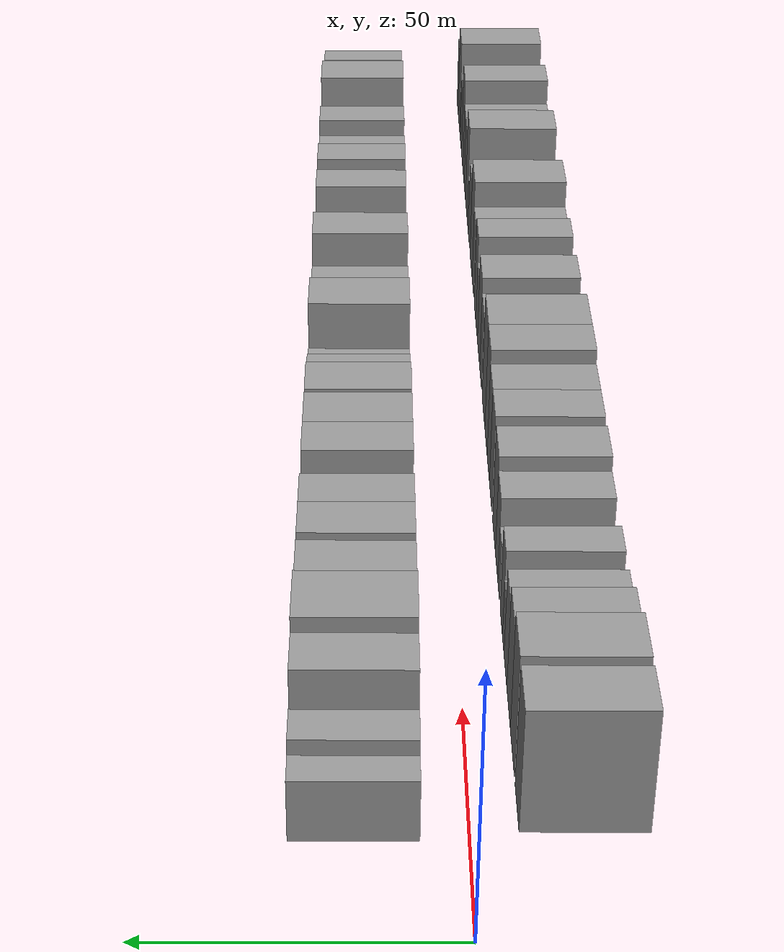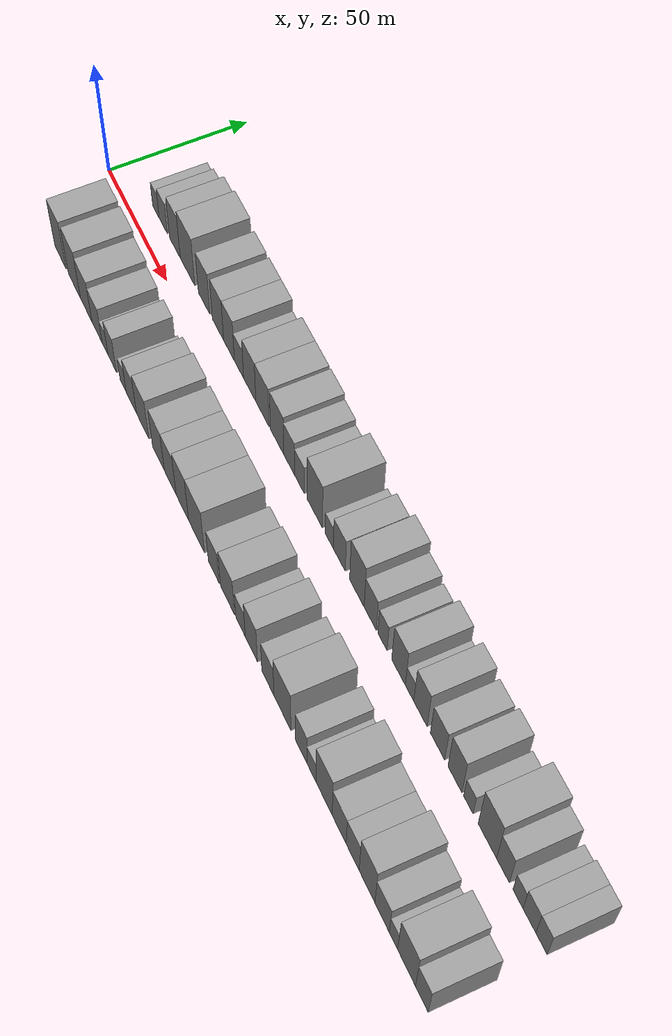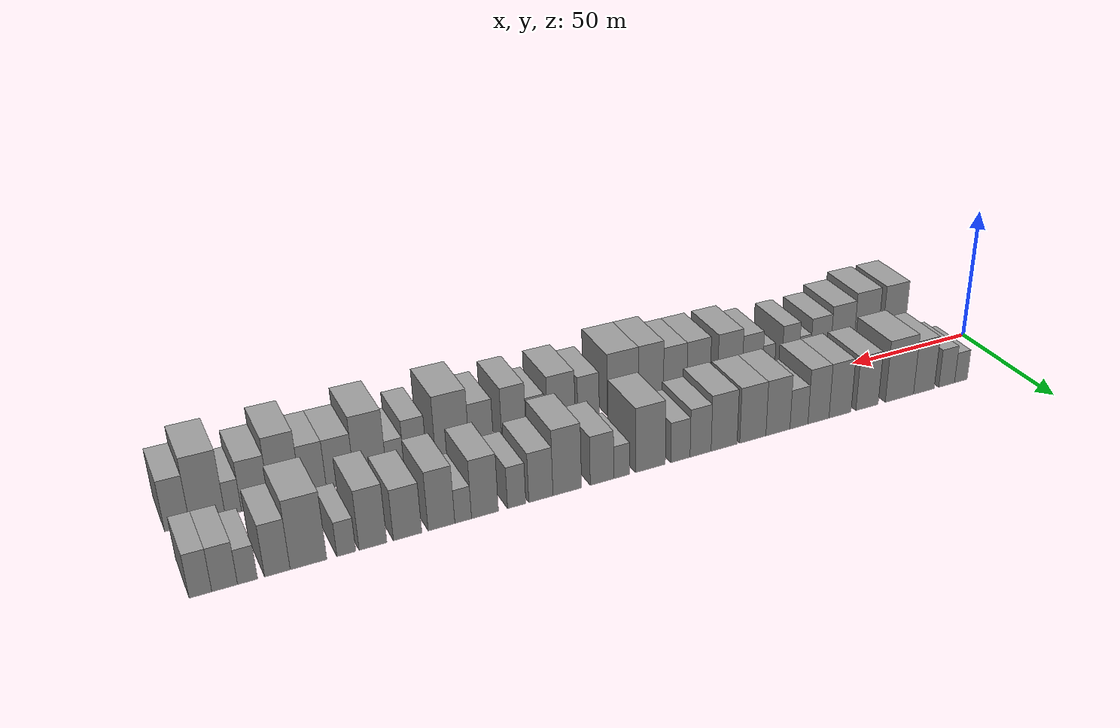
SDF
<sdf version="1.6">
 <world name="default">
  <scene>
   <sky><clouds><speed>12</speed></clouds></sky>
   <ambient>0.4 0.4 0.4 1</ambient>
   <background>0.7 0.7 0.7 1</background>
   <shadows>1</shadows>
  </scene>
  <gravity>0 0 -9.8066</gravity>
  <magnetic_field>6e-06 2.3e-05 -4.2e-05</magnetic_field>
  <physics default="0" name="default_physics" type="ode">
   <ode>
    <solver>
     <type>quick</type>
     <iters>10</iters>
     <sor>1.0</sor>
     <use_dynamic_moi_rescaling>0</use_dynamic_moi_rescaling>
    </solver>
    <constraints>
     <cfm>0</cfm>
     <erp>0.2</erp>
     <contact_max_correcting_vel>100</contact_max_correcting_vel>
     <contact_surface_layer>0.001</contact_surface_layer>
    </constraints>
   </ode>
   <max_step_size>0.004</max_step_size>
   <real_time_factor>1</real_time_factor>
   <real_time_update_rate>250</real_time_update_rate>
  </physics>
  <light name="sun" type="directional">
   <pose>0 0 10 0 0 0</pose>
   <diffuse>0.8 0.8 0.8 1</diffuse>
   <specular>0.2 0.2 0.2 1</specular>
   <attenuation>
    <range>1000</range>
    <constant>0.9</constant>
    <linear>0.01</linear>
    <quadratic>0.001</quadratic>
   </attenuation>
   <direction>-0.5 0.1 -0.9</direction>
  </light>
  <model name="building_1">
   <static>1</static>
   <pose>22.8088 17.5000 0 0.000000 0.000000 1.570796</pose>
   <link name="link">
    <pose>0 0 6.00 0 0 0</pose>
    <collision name="collision"><geometry><box><size>20.0000 5.6176 12.0000</size></box></geometry></collision>
    <visual name="visual">
     <cast_shadows>0</cast_shadows>
     <geometry><box><size>20.0000 5.6176 12.0000</size></box></geometry>
     <material>
      <script>
       <uri>model://grey_wall/materials/scripts</uri>
       <uri>model://grey_wall/materials/textures</uri>
       <name>vrc/grey_wall</name>
      </script>
     </material>
    </visual>
   </link>
  </model>
  <model name="building_2">
   <static>1</static>
   <pose>29.0675 17.5000 0 0.000000 0.000000 1.570796</pose>
   <link name="link">
    <pose>0 0 7.50 0 0 0</pose>
    <collision name="collision"><geometry><box><size>20.0000 6.8997 15.0000</size></box></geometry></collision>
    <visual name="visual">
     <cast_shadows>0</cast_shadows>
     <geometry><box><size>20.0000 6.8997 15.0000</size></box></geometry>
     <material>
      <script>
       <uri>model://grey_wall/materials/scripts</uri>
       <uri>model://grey_wall/materials/textures</uri>
       <name>vrc/grey_wall</name>
      </script>
     </material>
    </visual>
   </link>
  </model>
  <model name="building_3">
   <static>1</static>
   <pose>38.9829 17.5000 0 0.000000 0.000000 1.570796</pose>
   <link name="link">
    <pose>0 0 10.50 0 0 0</pose>
    <collision name="collision"><geometry><box><size>20.0000 8.9311 21.0000</size></box></geometry></collision>
    <visual name="visual">
     <cast_shadows>0</cast_shadows>
     <geometry><box><size>20.0000 8.9311 21.0000</size></box></geometry>
     <material>
      <script>
       <uri>model://grey_wall/materials/scripts</uri>
       <uri>model://grey_wall/materials/textures</uri>
       <name>vrc/grey_wall</name>
      </script>
     </material>
    </visual>
   </link>
  </model>
  <model name="building_4">
   <static>1</static>
   <pose>49.4302 17.5000 0 0.000000 0.000000 1.570796</pose>
   <link name="link">
    <pose>0 0 12.00 0 0 0</pose>
    <collision name="collision"><geometry><box><size>20.0000 11.9635 24.0000</size></box></geometry></collision>
    <visual name="visual">
     <cast_shadows>0</cast_shadows>
     <geometry><box><size>20.0000 11.9635 24.0000</size></box></geometry>
     <material>
      <script>
       <uri>model://grey_wall/materials/scripts</uri>
       <uri>model://grey_wall/materials/textures</uri>
       <name>vrc/grey_wall</name>
      </script>
     </material>
    </visual>
   </link>
  </model>
  <model name="building_5">
   <static>1</static>
   <pose>63.0284 17.5000 0 0.000000 0.000000 1.570796</pose>
   <link name="link">
    <pose>0 0 10.50 0 0 0</pose>
    <collision name="collision"><geometry><box><size>20.0000 9.2328 21.0000</size></box></geometry></collision>
    <visual name="visual">
     <cast_shadows>0</cast_shadows>
     <geometry><box><size>20.0000 9.2328 21.0000</size></box></geometry>
     <material>
      <script>
       <uri>model://grey_wall/materials/scripts</uri>
       <uri>model://grey_wall/materials/textures</uri>
       <name>vrc/grey_wall</name>
      </script>
     </material>
    </visual>
   </link>
  </model>
  <model name="building_6">
   <static>1</static>
   <pose>74.1490 17.5000 0 0.000000 0.000000 1.570796</pose>
   <link name="link">
    <pose>0 0 10.50 0 0 0</pose>
    <collision name="collision"><geometry><box><size>20.0000 9.0084 21.0000</size></box></geometry></collision>
    <visual name="visual">
     <cast_shadows>0</cast_shadows>
     <geometry><box><size>20.0000 9.0084 21.0000</size></box></geometry>
     <material>
      <script>
       <uri>model://grey_wall/materials/scripts</uri>
       <uri>model://grey_wall/materials/textures</uri>
       <name>vrc/grey_wall</name>
      </script>
     </material>
    </visual>
   </link>
  </model>
  <model name="building_7">
   <static>1</static>
   <pose>82.8882 17.5000 0 0.000000 0.000000 1.570796</pose>
   <link name="link">
    <pose>0 0 10.50 0 0 0</pose>
    <collision name="collision"><geometry><box><size>20.0000 8.4700 21.0000</size></box></geometry></collision>
    <visual name="visual">
     <cast_shadows>0</cast_shadows>
     <geometry><box><size>20.0000 8.4700 21.0000</size></box></geometry>
     <material>
      <script>
       <uri>model://grey_wall/materials/scripts</uri>
       <uri>model://grey_wall/materials/textures</uri>
       <name>vrc/grey_wall</name>
      </script>
     </material>
    </visual>
   </link>
  </model>
  <model name="building_8">
   <static>1</static>
   <pose>90.6920 17.5000 0 0.000000 0.000000 1.570796</pose>
   <link name="link">
    <pose>0 0 7.50 0 0 0</pose>
    <collision name="collision"><geometry><box><size>20.0000 7.1376 15.0000</size></box></geometry></collision>
    <visual name="visual">
     <cast_shadows>0</cast_shadows>
     <geometry><box><size>20.0000 7.1376 15.0000</size></box></geometry>
     <material>
      <script>
       <uri>model://grey_wall/materials/scripts</uri>
       <uri>model://grey_wall/materials/textures</uri>
       <name>vrc/grey_wall</name>
      </script>
     </material>
    </visual>
   </link>
  </model>
  <model name="building_9">
   <static>1</static>
   <pose>98.9678 17.5000 0 0.000000 0.000000 1.570796</pose>
   <link name="link">
    <pose>0 0 10.50 0 0 0</pose>
    <collision name="collision"><geometry><box><size>20.0000 9.4140 21.0000</size></box></geometry></collision>
    <visual name="visual">
     <cast_shadows>0</cast_shadows>
     <geometry><box><size>20.0000 9.4140 21.0000</size></box></geometry>
     <material>
      <script>
       <uri>model://grey_wall/materials/scripts</uri>
       <uri>model://grey_wall/materials/textures</uri>
       <name>vrc/grey_wall</name>
      </script>
     </material>
    </visual>
   </link>
  </model>
  <model name="building_10">
   <static>1</static>
   <pose>108.7142 17.5000 0 0.000000 0.000000 1.570796</pose>
   <link name="link">
    <pose>0 0 10.50 0 0 0</pose>
    <collision name="collision"><geometry><box><size>20.0000 10.0789 21.0000</size></box></geometry></collision>
    <visual name="visual">
     <cast_shadows>0</cast_shadows>
     <geometry><box><size>20.0000 10.0789 21.0000</size></box></geometry>
     <material>
      <script>
       <uri>model://grey_wall/materials/scripts</uri>
       <uri>model://grey_wall/materials/textures</uri>
       <name>vrc/grey_wall</name>
      </script>
     </material>
    </visual>
   </link>
  </model>
  <model name="building_11">
   <static>1</static>
   <pose>119.6716 17.5000 0 0.000000 0.000000 1.570796</pose>
   <link name="link">
    <pose>0 0 10.50 0 0 0</pose>
    <collision name="collision"><geometry><box><size>20.0000 9.8359 21.0000</size></box></geometry></collision>
    <visual name="visual">
     <cast_shadows>0</cast_shadows>
     <geometry><box><size>20.0000 9.8359 21.0000</size></box></geometry>
     <material>
      <script>
       <uri>model://grey_wall/materials/scripts</uri>
       <uri>model://grey_wall/materials/textures</uri>
       <name>vrc/grey_wall</name>
      </script>
     </material>
    </visual>
   </link>
  </model>
  <model name="building_12">
   <static>1</static>
   <pose>128.5033 17.5000 0 0.000000 0.000000 1.570796</pose>
   <link name="link">
    <pose>0 0 9.00 0 0 0</pose>
    <collision name="collision"><geometry><box><size>20.0000 7.8274 18.0000</size></box></geometry></collision>
    <visual name="visual">
     <cast_shadows>0</cast_shadows>
     <geometry><box><size>20.0000 7.8274 18.0000</size></box></geometry>
     <material>
      <script>
       <uri>model://grey_wall/materials/scripts</uri>
       <uri>model://grey_wall/materials/textures</uri>
       <name>vrc/grey_wall</name>
      </script>
     </material>
    </visual>
   </link>
  </model>
  <model name="building_13">
   <static>1</static>
   <pose>135.9548 17.5000 0 0.000000 0.000000 1.570796</pose>
   <link name="link">
    <pose>0 0 7.50 0 0 0</pose>
    <collision name="collision"><geometry><box><size>20.0000 7.0756 15.0000</size></box></geometry></collision>
    <visual name="visual">
     <cast_shadows>0</cast_shadows>
     <geometry><box><size>20.0000 7.0756 15.0000</size></box></geometry>
     <material>
      <script>
       <uri>model://grey_wall/materials/scripts</uri>
       <uri>model://grey_wall/materials/textures</uri>
       <name>vrc/grey_wall</name>
      </script>
     </material>
    </visual>
   </link>
  </model>
  <model name="building_14">
   <static>1</static>
   <pose>146.8929 17.5000 0 0.000000 0.000000 1.570796</pose>
   <link name="link">
    <pose>0 0 12.00 0 0 0</pose>
    <collision name="collision"><geometry><box><size>20.0000 10.8006 24.0000</size></box></geometry></collision>
    <visual name="visual">
     <cast_shadows>0</cast_shadows>
     <geometry><box><size>20.0000 10.8006 24.0000</size></box></geometry>
     <material>
      <script>
       <uri>model://grey_wall/materials/scripts</uri>
       <uri>model://grey_wall/materials/textures</uri>
       <name>vrc/grey_wall</name>
      </script>
     </material>
    </visual>
   </link>
  </model>
  <model name="building_15">
   <static>1</static>
   <pose>157.1167 17.5000 0 0.000000 0.000000 1.570796</pose>
   <link name="link">
    <pose>0 0 6.00 0 0 0</pose>
    <collision name="collision"><geometry><box><size>20.0000 5.6469 12.0000</size></box></geometry></collision>
    <visual name="visual">
     <cast_shadows>0</cast_shadows>
     <geometry><box><size>20.0000 5.6469 12.0000</size></box></geometry>
     <material>
      <script>
       <uri>model://grey_wall/materials/scripts</uri>
       <uri>model://grey_wall/materials/textures</uri>
       <name>vrc/grey_wall</name>
      </script>
     </material>
    </visual>
   </link>
  </model>
  <model name="building_16">
   <static>1</static>
   <pose>164.0576 17.5000 0 0.000000 0.000000 1.570796</pose>
   <link name="link">
    <pose>0 0 9.00 0 0 0</pose>
    <collision name="collision"><geometry><box><size>20.0000 8.2351 18.0000</size></box></geometry></collision>
    <visual name="visual">
     <cast_shadows>0</cast_shadows>
     <geometry><box><size>20.0000 8.2351 18.0000</size></box></geometry>
     <material>
      <script>
       <uri>model://grey_wall/materials/scripts</uri>
       <uri>model://grey_wall/materials/textures</uri>
       <name>vrc/grey_wall</name>
      </script>
     </material>
    </visual>
   </link>
  </model>
  <model name="building_17">
   <static>1</static>
   <pose>176.0760 17.5000 0 0.000000 0.000000 1.570796</pose>
   <link name="link">
    <pose>0 0 12.00 0 0 0</pose>
    <collision name="collision"><geometry><box><size>20.0000 9.8016 24.0000</size></box></geometry></collision>
    <visual name="visual">
     <cast_shadows>0</cast_shadows>
     <geometry><box><size>20.0000 9.8016 24.0000</size></box></geometry>
     <material>
      <script>
       <uri>model://grey_wall/materials/scripts</uri>
       <uri>model://grey_wall/materials/textures</uri>
       <name>vrc/grey_wall</name>
      </script>
     </material>
    </visual>
   </link>
  </model>
  <model name="building_18">
   <static>1</static>
   <pose>185.0496 17.5000 0 0.000000 0.000000 1.570796</pose>
   <link name="link">
    <pose>0 0 9.00 0 0 0</pose>
    <collision name="collision"><geometry><box><size>20.0000 8.1455 18.0000</size></box></geometry></collision>
    <visual name="visual">
     <cast_shadows>0</cast_shadows>
     <geometry><box><size>20.0000 8.1455 18.0000</size></box></geometry>
     <material>
      <script>
       <uri>model://grey_wall/materials/scripts</uri>
       <uri>model://grey_wall/materials/textures</uri>
       <name>vrc/grey_wall</name>
      </script>
     </material>
    </visual>
   </link>
  </model>
  <model name="building_19">
   <static>1</static>
   <pose>193.1614 17.5000 0 0.000000 0.000000 1.570796</pose>
   <link name="link">
    <pose>0 0 7.50 0 0 0</pose>
    <collision name="collision"><geometry><box><size>20.0000 6.0782 15.0000</size></box></geometry></collision>
    <visual name="visual">
     <cast_shadows>0</cast_shadows>
     <geometry><box><size>20.0000 6.0782 15.0000</size></box></geometry>
     <material>
      <script>
       <uri>model://grey_wall/materials/scripts</uri>
       <uri>model://grey_wall/materials/textures</uri>
       <name>vrc/grey_wall</name>
      </script>
     </material>
    </visual>
   </link>
  </model>
  <model name="building_20">
   <static>1</static>
   <pose>203.5770 17.5000 0 0.000000 0.000000 1.570796</pose>
   <link name="link">
    <pose>0 0 10.50 0 0 0</pose>
    <collision name="collision"><geometry><box><size>20.0000 8.7530 21.0000</size></box></geometry></collision>
    <visual name="visual">
     <cast_shadows>0</cast_shadows>
     <geometry><box><size>20.0000 8.7530 21.0000</size></box></geometry>
     <material>
      <script>
       <uri>model://grey_wall/materials/scripts</uri>
       <uri>model://grey_wall/materials/textures</uri>
       <name>vrc/grey_wall</name>
      </script>
     </material>
    </visual>
   </link>
  </model>
  <model name="building_21">
   <static>1</static>
   <pose>210.6420 17.5000 0 0.000000 0.000000 1.570796</pose>
   <link name="link">
    <pose>0 0 6.00 0 0 0</pose>
    <collision name="collision"><geometry><box><size>20.0000 5.3771 12.0000</size></box></geometry></collision>
    <visual name="visual">
     <cast_shadows>0</cast_shadows>
     <geometry><box><size>20.0000 5.3771 12.0000</size></box></geometry>
     <material>
      <script>
       <uri>model://grey_wall/materials/scripts</uri>
       <uri>model://grey_wall/materials/textures</uri>
       <name>vrc/grey_wall</name>
      </script>
     </material>
    </visual>
   </link>
  </model>
  <model name="building_22">
   <static>1</static>
   <pose>217.5664 17.5000 0 0.000000 0.000000 1.570796</pose>
   <link name="link">
    <pose>0 0 10.50 0 0 0</pose>
    <collision name="collision"><geometry><box><size>20.0000 8.4718 21.0000</size></box></geometry></collision>
    <visual name="visual">
     <cast_shadows>0</cast_shadows>
     <geometry><box><size>20.0000 8.4718 21.0000</size></box></geometry>
     <material>
      <script>
       <uri>model://grey_wall/materials/scripts</uri>
       <uri>model://grey_wall/materials/textures</uri>
       <name>vrc/grey_wall</name>
      </script>
     </material>
    </visual>
   </link>
  </model>
  <model name="building_23">
   <static>1</static>
   <pose>228.2282 17.5000 0 0.000000 0.000000 1.570796</pose>
   <link name="link">
    <pose>0 0 9.00 0 0 0</pose>
    <collision name="collision"><geometry><box><size>20.0000 8.8518 18.0000</size></box></geometry></collision>
    <visual name="visual">
     <cast_shadows>0</cast_shadows>
     <geometry><box><size>20.0000 8.8518 18.0000</size></box></geometry>
     <material>
      <script>
       <uri>model://grey_wall/materials/scripts</uri>
       <uri>model://grey_wall/materials/textures</uri>
       <name>vrc/grey_wall</name>
      </script>
     </material>
    </visual>
   </link>
  </model>
  <model name="building_24">
   <static>1</static>
   <pose>238.8957 17.5000 0 0.000000 0.000000 1.570796</pose>
   <link name="link">
    <pose>0 0 10.50 0 0 0</pose>
    <collision name="collision"><geometry><box><size>20.0000 8.4833 21.0000</size></box></geometry></collision>
    <visual name="visual">
     <cast_shadows>0</cast_shadows>
     <geometry><box><size>20.0000 8.4833 21.0000</size></box></geometry>
     <material>
      <script>
       <uri>model://grey_wall/materials/scripts</uri>
       <uri>model://grey_wall/materials/textures</uri>
       <name>vrc/grey_wall</name>
      </script>
     </material>
    </visual>
   </link>
  </model>
  <model name="building_25">
   <static>1</static>
   <pose>246.9758 17.5000 0 0.000000 0.000000 1.570796</pose>
   <link name="link">
    <pose>0 0 6.00 0 0 0</pose>
    <collision name="collision"><geometry><box><size>20.0000 5.6768 12.0000</size></box></geometry></collision>
    <visual name="visual">
     <cast_shadows>0</cast_shadows>
     <geometry><box><size>20.0000 5.6768 12.0000</size></box></geometry>
     <material>
      <script>
       <uri>model://grey_wall/materials/scripts</uri>
       <uri>model://grey_wall/materials/textures</uri>
       <name>vrc/grey_wall</name>
      </script>
     </material>
    </visual>
   </link>
  </model>
  <model name="building_26">
   <static>1</static>
   <pose>258.2044 17.5000 0 0.000000 0.000000 1.570796</pose>
   <link name="link">
    <pose>0 0 12.00 0 0 0</pose>
    <collision name="collision"><geometry><box><size>20.0000 10.7804 24.0000</size></box></geometry></collision>
    <visual name="visual">
     <cast_shadows>0</cast_shadows>
     <geometry><box><size>20.0000 10.7804 24.0000</size></box></geometry>
     <material>
      <script>
       <uri>model://grey_wall/materials/scripts</uri>
       <uri>model://grey_wall/materials/textures</uri>
       <name>vrc/grey_wall</name>
      </script>
     </material>
    </visual>
   </link>
  </model>
  <model name="building_27">
   <static>1</static>
   <pose>267.2992 17.5000 0 0.000000 0.000000 1.570796</pose>
   <link name="link">
    <pose>0 0 9.00 0 0 0</pose>
    <collision name="collision"><geometry><box><size>20.0000 7.4094 18.0000</size></box></geometry></collision>
    <visual name="visual">
     <cast_shadows>0</cast_shadows>
     <geometry><box><size>20.0000 7.4094 18.0000</size></box></geometry>
     <material>
      <script>
       <uri>model://grey_wall/materials/scripts</uri>
       <uri>model://grey_wall/materials/textures</uri>
       <name>vrc/grey_wall</name>
      </script>
     </material>
    </visual>
   </link>
  </model>
  <model name="building_28">
   <static>1</static>
   <pose>275.8437 17.5000 0 0.000000 0.000000 1.570796</pose>
   <link name="link">
    <pose>0 0 6.00 0 0 0</pose>
    <collision name="collision"><geometry><box><size>20.0000 5.6797 12.0000</size></box></geometry></collision>
    <visual name="visual">
     <cast_shadows>0</cast_shadows>
     <geometry><box><size>20.0000 5.6797 12.0000</size></box></geometry>
     <material>
      <script>
       <uri>model://grey_wall/materials/scripts</uri>
       <uri>model://grey_wall/materials/textures</uri>
       <name>vrc/grey_wall</name>
      </script>
     </material>
    </visual>
   </link>
  </model>
  <model name="building_29">
   <static>1</static>
   <pose>282.2980 17.5000 0 0.000000 0.000000 1.570796</pose>
   <link name="link">
    <pose>0 0 7.50 0 0 0</pose>
    <collision name="collision"><geometry><box><size>20.0000 7.2288 15.0000</size></box></geometry></collision>
    <visual name="visual">
     <cast_shadows>0</cast_shadows>
     <geometry><box><size>20.0000 7.2288 15.0000</size></box></geometry>
     <material>
      <script>
       <uri>model://grey_wall/materials/scripts</uri>
       <uri>model://grey_wall/materials/textures</uri>
       <name>vrc/grey_wall</name>
      </script>
     </material>
    </visual>
   </link>
  </model>
  <model name="building_30">
   <static>1</static>
   <pose>289.0612 17.5000 0 0.000000 0.000000 1.570796</pose>
   <link name="link">
    <pose>0 0 7.50 0 0 0</pose>
    <collision name="collision"><geometry><box><size>20.0000 6.2976 15.0000</size></box></geometry></collision>
    <visual name="visual">
     <cast_shadows>0</cast_shadows>
     <geometry><box><size>20.0000 6.2976 15.0000</size></box></geometry>
     <material>
      <script>
       <uri>model://grey_wall/materials/scripts</uri>
       <uri>model://grey_wall/materials/textures</uri>
       <name>vrc/grey_wall</name>
      </script>
     </material>
    </visual>
   </link>
  </model>
  <model name="building_31">
   <static>1</static>
   <pose>27.0936 -17.5000 0 0.000000 0.000000 1.570796</pose>
   <link name="link">
    <pose>0 0 12.00 0 0 0</pose>
    <collision name="collision"><geometry><box><size>20.0000 10.1872 24.0000</size></box></geometry></collision>
    <visual name="visual">
     <cast_shadows>0</cast_shadows>
     <geometry><box><size>20.0000 10.1872 24.0000</size></box></geometry>
     <material>
      <script>
       <uri>model://grey_wall/materials/scripts</uri>
       <uri>model://grey_wall/materials/textures</uri>
       <name>vrc/grey_wall</name>
      </script>
     </material>
    </visual>
   </link>
  </model>
  <model name="building_32">
   <static>1</static>
   <pose>39.5637 -17.5000 0 0.000000 0.000000 1.570796</pose>
   <link name="link">
    <pose>0 0 12.00 0 0 0</pose>
    <collision name="collision"><geometry><box><size>20.0000 10.7530 24.0000</size></box></geometry></collision>
    <visual name="visual">
     <cast_shadows>0</cast_shadows>
     <geometry><box><size>20.0000 10.7530 24.0000</size></box></geometry>
     <material>
      <script>
       <uri>model://grey_wall/materials/scripts</uri>
       <uri>model://grey_wall/materials/textures</uri>
       <name>vrc/grey_wall</name>
      </script>
     </material>
    </visual>
   </link>
  </model>
  <model name="building_33">
   <static>1</static>
   <pose>50.0177 -17.5000 0 0.000000 0.000000 1.570796</pose>
   <link name="link">
    <pose>0 0 10.50 0 0 0</pose>
    <collision name="collision"><geometry><box><size>20.0000 10.1551 21.0000</size></box></geometry></collision>
    <visual name="visual">
     <cast_shadows>0</cast_shadows>
     <geometry><box><size>20.0000 10.1551 21.0000</size></box></geometry>
     <material>
      <script>
       <uri>model://grey_wall/materials/scripts</uri>
       <uri>model://grey_wall/materials/textures</uri>
       <name>vrc/grey_wall</name>
      </script>
     </material>
    </visual>
   </link>
  </model>
  <model name="building_34">
   <static>1</static>
   <pose>59.4361 -17.5000 0 0.000000 0.000000 1.570796</pose>
   <link name="link">
    <pose>0 0 9.00 0 0 0</pose>
    <collision name="collision"><geometry><box><size>20.0000 8.6816 18.0000</size></box></geometry></collision>
    <visual name="visual">
     <cast_shadows>0</cast_shadows>
     <geometry><box><size>20.0000 8.6816 18.0000</size></box></geometry>
     <material>
      <script>
       <uri>model://grey_wall/materials/scripts</uri>
       <uri>model://grey_wall/materials/textures</uri>
       <name>vrc/grey_wall</name>
      </script>
     </material>
    </visual>
   </link>
  </model>
  <model name="building_35">
   <static>1</static>
   <pose>66.2339 -17.5000 0 0.000000 0.000000 1.570796</pose>
   <link name="link">
    <pose>0 0 6.00 0 0 0</pose>
    <collision name="collision"><geometry><box><size>20.0000 4.9140 12.0000</size></box></geometry></collision>
    <visual name="visual">
     <cast_shadows>0</cast_shadows>
     <geometry><box><size>20.0000 4.9140 12.0000</size></box></geometry>
     <material>
      <script>
       <uri>model://grey_wall/materials/scripts</uri>
       <uri>model://grey_wall/materials/textures</uri>
       <name>vrc/grey_wall</name>
      </script>
     </material>
    </visual>
   </link>
  </model>
  <model name="building_36">
   <static>1</static>
   <pose>72.3011 -17.5000 0 0.000000 0.000000 1.570796</pose>
   <link name="link">
    <pose>0 0 9.00 0 0 0</pose>
    <collision name="collision"><geometry><box><size>20.0000 7.2204 18.0000</size></box></geometry></collision>
    <visual name="visual">
     <cast_shadows>0</cast_shadows>
     <geometry><box><size>20.0000 7.2204 18.0000</size></box></geometry>
     <material>
      <script>
       <uri>model://grey_wall/materials/scripts</uri>
       <uri>model://grey_wall/materials/textures</uri>
       <name>vrc/grey_wall</name>
      </script>
     </material>
    </visual>
   </link>
  </model>
  <model name="building_37">
   <static>1</static>
   <pose>81.4297 -17.5000 0 0.000000 0.000000 1.570796</pose>
   <link name="link">
    <pose>0 0 6.00 0 0 0</pose>
    <collision name="collision"><geometry><box><size>20.0000 5.0368 12.0000</size></box></geometry></collision>
    <visual name="visual">
     <cast_shadows>0</cast_shadows>
     <geometry><box><size>20.0000 5.0368 12.0000</size></box></geometry>
     <material>
      <script>
       <uri>model://grey_wall/materials/scripts</uri>
       <uri>model://grey_wall/materials/textures</uri>
       <name>vrc/grey_wall</name>
      </script>
     </material>
    </visual>
   </link>
  </model>
  <model name="building_38">
   <static>1</static>
   <pose>88.1832 -17.5000 0 0.000000 0.000000 1.570796</pose>
   <link name="link">
    <pose>0 0 9.00 0 0 0</pose>
    <collision name="collision"><geometry><box><size>20.0000 8.4702 18.0000</size></box></geometry></collision>
    <visual name="visual">
     <cast_shadows>0</cast_shadows>
     <geometry><box><size>20.0000 8.4702 18.0000</size></box></geometry>
     <material>
      <script>
       <uri>model://grey_wall/materials/scripts</uri>
       <uri>model://grey_wall/materials/textures</uri>
       <name>vrc/grey_wall</name>
      </script>
     </material>
    </visual>
   </link>
  </model>
  <model name="building_39">
   <static>1</static>
   <pose>97.4224 -17.5000 0 0.000000 0.000000 1.570796</pose>
   <link name="link">
    <pose>0 0 10.50 0 0 0</pose>
    <collision name="collision"><geometry><box><size>20.0000 10.0081 21.0000</size></box></geometry></collision>
    <visual name="visual">
     <cast_shadows>0</cast_shadows>
     <geometry><box><size>20.0000 10.0081 21.0000</size></box></geometry>
     <material>
      <script>
       <uri>model://grey_wall/materials/scripts</uri>
       <uri>model://grey_wall/materials/textures</uri>
       <name>vrc/grey_wall</name>
      </script>
     </material>
    </visual>
   </link>
  </model>
  <model name="building_40">
   <static>1</static>
   <pose>110.1079 -17.5000 0 0.000000 0.000000 1.570796</pose>
   <link name="link">
    <pose>0 0 10.50 0 0 0</pose>
    <collision name="collision"><geometry><box><size>20.0000 9.3630 21.0000</size></box></geometry></collision>
    <visual name="visual">
     <cast_shadows>0</cast_shadows>
     <geometry><box><size>20.0000 9.3630 21.0000</size></box></geometry>
     <material>
      <script>
       <uri>model://grey_wall/materials/scripts</uri>
       <uri>model://grey_wall/materials/textures</uri>
       <name>vrc/grey_wall</name>
      </script>
     </material>
    </visual>
   </link>
  </model>
  <model name="building_41">
   <static>1</static>
   <pose>119.3679 -17.5000 0 0.000000 0.000000 1.570796</pose>
   <link name="link">
    <pose>0 0 10.50 0 0 0</pose>
    <collision name="collision"><geometry><box><size>20.0000 9.1570 21.0000</size></box></geometry></collision>
    <visual name="visual">
     <cast_shadows>0</cast_shadows>
     <geometry><box><size>20.0000 9.1570 21.0000</size></box></geometry>
     <material>
      <script>
       <uri>model://grey_wall/materials/scripts</uri>
       <uri>model://grey_wall/materials/textures</uri>
       <name>vrc/grey_wall</name>
      </script>
     </material>
    </visual>
   </link>
  </model>
  <model name="building_42">
   <static>1</static>
   <pose>128.7870 -17.5000 0 0.000000 0.000000 1.570796</pose>
   <link name="link">
    <pose>0 0 12.00 0 0 0</pose>
    <collision name="collision"><geometry><box><size>20.0000 9.6812 24.0000</size></box></geometry></collision>
    <visual name="visual">
     <cast_shadows>0</cast_shadows>
     <geometry><box><size>20.0000 9.6812 24.0000</size></box></geometry>
     <material>
      <script>
       <uri>model://grey_wall/materials/scripts</uri>
       <uri>model://grey_wall/materials/textures</uri>
       <name>vrc/grey_wall</name>
      </script>
     </material>
    </visual>
   </link>
  </model>
  <model name="building_43">
   <static>1</static>
   <pose>139.5583 -17.5000 0 0.000000 0.000000 1.570796</pose>
   <link name="link">
    <pose>0 0 12.00 0 0 0</pose>
    <collision name="collision"><geometry><box><size>20.0000 11.8613 24.0000</size></box></geometry></collision>
    <visual name="visual">
     <cast_shadows>0</cast_shadows>
     <geometry><box><size>20.0000 11.8613 24.0000</size></box></geometry>
     <material>
      <script>
       <uri>model://grey_wall/materials/scripts</uri>
       <uri>model://grey_wall/materials/textures</uri>
       <name>vrc/grey_wall</name>
      </script>
     </material>
    </visual>
   </link>
  </model>
  <model name="building_44">
   <static>1</static>
   <pose>152.4879 -17.5000 0 0.000000 0.000000 1.570796</pose>
   <link name="link">
    <pose>0 0 9.00 0 0 0</pose>
    <collision name="collision"><geometry><box><size>20.0000 7.9980 18.0000</size></box></geometry></collision>
    <visual name="visual">
     <cast_shadows>0</cast_shadows>
     <geometry><box><size>20.0000 7.9980 18.0000</size></box></geometry>
     <material>
      <script>
       <uri>model://grey_wall/materials/scripts</uri>
       <uri>model://grey_wall/materials/textures</uri>
       <name>vrc/grey_wall</name>
      </script>
     </material>
    </visual>
   </link>
  </model>
  <model name="building_45">
   <static>1</static>
   <pose>162.5584 -17.5000 0 0.000000 0.000000 1.570796</pose>
   <link name="link">
    <pose>0 0 10.50 0 0 0</pose>
    <collision name="collision"><geometry><box><size>20.0000 10.1430 21.0000</size></box></geometry></collision>
    <visual name="visual">
     <cast_shadows>0</cast_shadows>
     <geometry><box><size>20.0000 10.1430 21.0000</size></box></geometry>
     <material>
      <script>
       <uri>model://grey_wall/materials/scripts</uri>
       <uri>model://grey_wall/materials/textures</uri>
       <name>vrc/grey_wall</name>
      </script>
     </material>
    </visual>
   </link>
  </model>
  <model name="building_46">
   <static>1</static>
   <pose>172.0141 -17.5000 0 0.000000 0.000000 1.570796</pose>
   <link name="link">
    <pose>0 0 7.50 0 0 0</pose>
    <collision name="collision"><geometry><box><size>20.0000 6.7682 15.0000</size></box></geometry></collision>
    <visual name="visual">
     <cast_shadows>0</cast_shadows>
     <geometry><box><size>20.0000 6.7682 15.0000</size></box></geometry>
     <material>
      <script>
       <uri>model://grey_wall/materials/scripts</uri>
       <uri>model://grey_wall/materials/textures</uri>
       <name>vrc/grey_wall</name>
      </script>
     </material>
    </visual>
   </link>
  </model>
  <model name="building_47">
   <static>1</static>
   <pose>179.7088 -17.5000 0 0.000000 0.000000 1.570796</pose>
   <link name="link">
    <pose>0 0 10.50 0 0 0</pose>
    <collision name="collision"><geometry><box><size>20.0000 8.6212 21.0000</size></box></geometry></collision>
    <visual name="visual">
     <cast_shadows>0</cast_shadows>
     <geometry><box><size>20.0000 8.6212 21.0000</size></box></geometry>
     <material>
      <script>
       <uri>model://grey_wall/materials/scripts</uri>
       <uri>model://grey_wall/materials/textures</uri>
       <name>vrc/grey_wall</name>
      </script>
     </material>
    </visual>
   </link>
  </model>
  <model name="building_48">
   <static>1</static>
   <pose>191.2568 -17.5000 0 0.000000 0.000000 1.570796</pose>
   <link name="link">
    <pose>0 0 9.00 0 0 0</pose>
    <collision name="collision"><geometry><box><size>20.0000 8.4749 18.0000</size></box></geometry></collision>
    <visual name="visual">
     <cast_shadows>0</cast_shadows>
     <geometry><box><size>20.0000 8.4749 18.0000</size></box></geometry>
     <material>
      <script>
       <uri>model://grey_wall/materials/scripts</uri>
       <uri>model://grey_wall/materials/textures</uri>
       <name>vrc/grey_wall</name>
      </script>
     </material>
    </visual>
   </link>
  </model>
  <model name="building_49">
   <static>1</static>
   <pose>201.2703 -17.5000 0 0.000000 0.000000 1.570796</pose>
   <link name="link">
    <pose>0 0 12.00 0 0 0</pose>
    <collision name="collision"><geometry><box><size>20.0000 11.5521 24.0000</size></box></geometry></collision>
    <visual name="visual">
     <cast_shadows>0</cast_shadows>
     <geometry><box><size>20.0000 11.5521 24.0000</size></box></geometry>
     <material>
      <script>
       <uri>model://grey_wall/materials/scripts</uri>
       <uri>model://grey_wall/materials/textures</uri>
       <name>vrc/grey_wall</name>
      </script>
     </material>
    </visual>
   </link>
  </model>
  <model name="building_50">
   <static>1</static>
   <pose>213.8423 -17.5000 0 0.000000 0.000000 1.570796</pose>
   <link name="link">
    <pose>0 0 9.00 0 0 0</pose>
    <collision name="collision"><geometry><box><size>20.0000 7.5920 18.0000</size></box></geometry></collision>
    <visual name="visual">
     <cast_shadows>0</cast_shadows>
     <geometry><box><size>20.0000 7.5920 18.0000</size></box></geometry>
     <material>
      <script>
       <uri>model://grey_wall/materials/scripts</uri>
       <uri>model://grey_wall/materials/textures</uri>
       <name>vrc/grey_wall</name>
      </script>
     </material>
    </visual>
   </link>
  </model>
  <model name="building_51">
   <static>1</static>
   <pose>220.6054 -17.5000 0 0.000000 0.000000 1.570796</pose>
   <link name="link">
    <pose>0 0 6.00 0 0 0</pose>
    <collision name="collision"><geometry><box><size>20.0000 5.9341 12.0000</size></box></geometry></collision>
    <visual name="visual">
     <cast_shadows>0</cast_shadows>
     <geometry><box><size>20.0000 5.9341 12.0000</size></box></geometry>
     <material>
      <script>
       <uri>model://grey_wall/materials/scripts</uri>
       <uri>model://grey_wall/materials/textures</uri>
       <name>vrc/grey_wall</name>
      </script>
     </material>
    </visual>
   </link>
  </model>
  <model name="building_52">
   <static>1</static>
   <pose>228.8531 -17.5000 0 0.000000 0.000000 1.570796</pose>
   <link name="link">
    <pose>0 0 12.00 0 0 0</pose>
    <collision name="collision"><geometry><box><size>20.0000 10.5613 24.0000</size></box></geometry></collision>
    <visual name="visual">
     <cast_shadows>0</cast_shadows>
     <geometry><box><size>20.0000 10.5613 24.0000</size></box></geometry>
     <material>
      <script>
       <uri>model://grey_wall/materials/scripts</uri>
       <uri>model://grey_wall/materials/textures</uri>
       <name>vrc/grey_wall</name>
      </script>
     </material>
    </visual>
   </link>
  </model>
  <model name="building_53">
   <static>1</static>
   <pose>238.6192 -17.5000 0 0.000000 0.000000 1.570796</pose>
   <link name="link">
    <pose>0 0 9.00 0 0 0</pose>
    <collision name="collision"><geometry><box><size>20.0000 8.9711 18.0000</size></box></geometry></collision>
    <visual name="visual">
     <cast_shadows>0</cast_shadows>
     <geometry><box><size>20.0000 8.9711 18.0000</size></box></geometry>
     <material>
      <script>
       <uri>model://grey_wall/materials/scripts</uri>
       <uri>model://grey_wall/materials/textures</uri>
       <name>vrc/grey_wall</name>
      </script>
     </material>
    </visual>
   </link>
  </model>
  <model name="building_54">
   <static>1</static>
   <pose>247.1729 -17.5000 0 0.000000 0.000000 1.570796</pose>
   <link name="link">
    <pose>0 0 9.00 0 0 0</pose>
    <collision name="collision"><geometry><box><size>20.0000 8.1363 18.0000</size></box></geometry></collision>
    <visual name="visual">
     <cast_shadows>0</cast_shadows>
     <geometry><box><size>20.0000 8.1363 18.0000</size></box></geometry>
     <material>
      <script>
       <uri>model://grey_wall/materials/scripts</uri>
       <uri>model://grey_wall/materials/textures</uri>
       <name>vrc/grey_wall</name>
      </script>
     </material>
    </visual>
   </link>
  </model>
  <model name="building_55">
   <static>1</static>
   <pose>256.1180 -17.5000 0 0.000000 0.000000 1.570796</pose>
   <link name="link">
    <pose>0 0 12.00 0 0 0</pose>
    <collision name="collision"><geometry><box><size>20.0000 9.7540 24.0000</size></box></geometry></collision>
    <visual name="visual">
     <cast_shadows>0</cast_shadows>
     <geometry><box><size>20.0000 9.7540 24.0000</size></box></geometry>
     <material>
      <script>
       <uri>model://grey_wall/materials/scripts</uri>
       <uri>model://grey_wall/materials/textures</uri>
       <name>vrc/grey_wall</name>
      </script>
     </material>
    </visual>
   </link>
  </model>
  <model name="building_56">
   <static>1</static>
   <pose>265.3209 -17.5000 0 0.000000 0.000000 1.570796</pose>
   <link name="link">
    <pose>0 0 9.00 0 0 0</pose>
    <collision name="collision"><geometry><box><size>20.0000 8.6519 18.0000</size></box></geometry></collision>
    <visual name="visual">
     <cast_shadows>0</cast_shadows>
     <geometry><box><size>20.0000 8.6519 18.0000</size></box></geometry>
     <material>
      <script>
       <uri>model://grey_wall/materials/scripts</uri>
       <uri>model://grey_wall/materials/textures</uri>
       <name>vrc/grey_wall</name>
      </script>
     </material>
    </visual>
   </link>
  </model>
  <model name="building_57">
   <static>1</static>
   <pose>272.1334 -17.5000 0 0.000000 0.000000 1.570796</pose>
   <link name="link">
    <pose>0 0 6.00 0 0 0</pose>
    <collision name="collision"><geometry><box><size>20.0000 4.9730 12.0000</size></box></geometry></collision>
    <visual name="visual">
     <cast_shadows>0</cast_shadows>
     <geometry><box><size>20.0000 4.9730 12.0000</size></box></geometry>
     <material>
      <script>
       <uri>model://grey_wall/materials/scripts</uri>
       <uri>model://grey_wall/materials/textures</uri>
       <name>vrc/grey_wall</name>
      </script>
     </material>
    </visual>
   </link>
  </model>
  <model name="building_58">
   <static>1</static>
   <pose>279.9167 -17.5000 0 0.000000 0.000000 1.570796</pose>
   <link name="link">
    <pose>0 0 12.00 0 0 0</pose>
    <collision name="collision"><geometry><box><size>20.0000 10.5937 24.0000</size></box></geometry></collision>
    <visual name="visual">
     <cast_shadows>0</cast_shadows>
     <geometry><box><size>20.0000 10.5937 24.0000</size></box></geometry>
     <material>
      <script>
       <uri>model://grey_wall/materials/scripts</uri>
       <uri>model://grey_wall/materials/textures</uri>
       <name>vrc/grey_wall</name>
      </script>
     </material>
    </visual>
   </link>
  </model>
  <model name="building_59">
   <static>1</static>
   <pose>288.9340 -17.5000 0 0.000000 0.000000 1.570796</pose>
   <link name="link">
    <pose>0 0 9.00 0 0 0</pose>
    <collision name="collision"><geometry><box><size>20.0000 7.4408 18.0000</size></box></geometry></collision>
    <visual name="visual">
     <cast_shadows>0</cast_shadows>
     <geometry><box><size>20.0000 7.4408 18.0000</size></box></geometry>
     <material>
      <script>
       <uri>model://grey_wall/materials/scripts</uri>
       <uri>model://grey_wall/materials/textures</uri>
       <name>vrc/grey_wall</name>
      </script>
     </material>
    </visual>
   </link>
  </model>
 </world>
</sdf>
